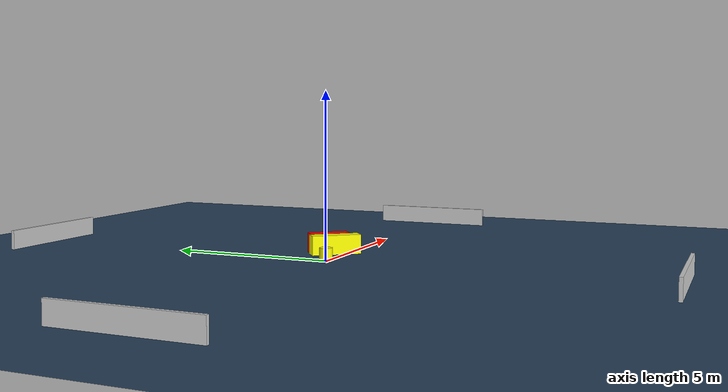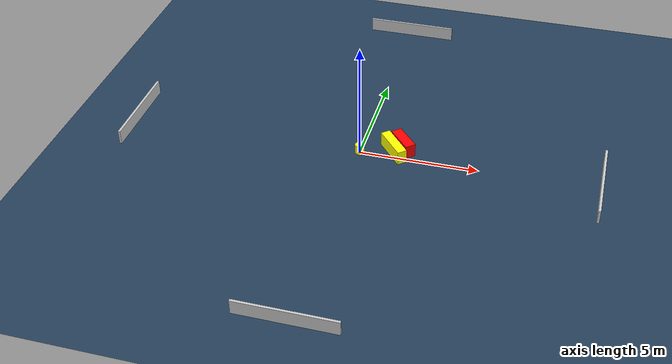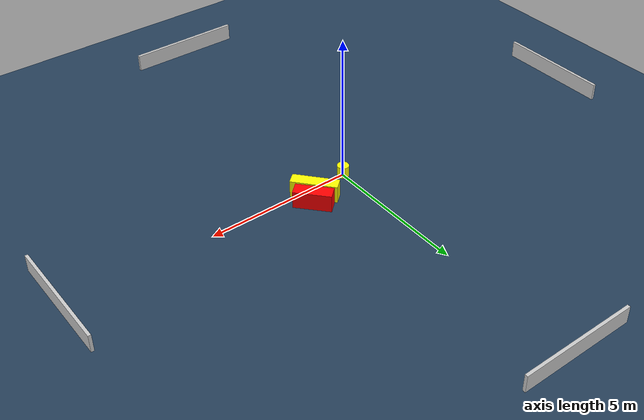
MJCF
<?xml version="1.0" ?>
<mujoco model="generated_environment">
  <option timestep="0.01" integrator="RK4" cone="elliptic"/>
  <default>
    <geom density="1"/>
  </default>
  <asset>
    <texture builtin="gradient" height="3072" name="skybox" rgb1="0.3 0.5 0.7" rgb2="0 0 0" type="skybox" width="512"/>
    <texture builtin="checker" height="300" name="groundplane" rgb1="0.2 0.3 0.4" rgb2="0.1 0.2 0.3" type="2d" width="300"/>
    <material name="groundplane" reflectance="0.2" texrepeat="5 5" texture="groundplane"/>
  </asset>
  <worldbody>
    <light dir="0 0 -1" directional="true" pos="0 0 1.5"/>
    <geom condim="3" friction="0.5 0.005 0.001" material="groundplane" name="floor" pos="0 0 0" size="0 0 0.05" type="plane"/>
    <body name="walls">
      <geom name="wall_1" condim="4" pos="-10.0 0.0 0.3" rgba="0.800000011920929 0.800000011920929 0.800000011920929 1.0" size="0.05 2.0 0.3" type="box"/>
      <geom name="wall_2" condim="4" pos="10.0 0.0 0.3" rgba="0.800000011920929 0.800000011920929 0.800000011920929 1.0" size="0.05 2.0 0.3" type="box"/>
      <geom name="wall_3" condim="4" pos="0.0 -10.0 0.3" rgba="0.800000011920929 0.800000011920929 0.800000011920929 1.0" size="2.0 0.05 0.3" type="box"/>
      <geom name="wall_4" condim="4" pos="0.0 10.0 0.3" rgba="0.800000011920929 0.800000011920929 0.800000011920929 1.0" size="2.0 0.05 0.3" type="box"/>
    </body>
    <body name="robot">
      <joint name="joint_x" type="slide" pos="0 0 0" axis="1 0 0"/>
      <joint name="joint_y" type="slide" pos="0 0 0" axis="0 1 0"/>
      <geom name="robot" type="cylinder" pos="0.0 0.0 0.2" size="0.2 0.2 0.0" mass="5.0" friction="1.0 0.005 0.0001" condim="4" rgba="1.0 1.0 0.0 1.0"/>
    </body>
    <body name="obstacle_1_movable">
      <geom name="obstacle_1_movable" condim="4" pos="1.3760133759833106 0.3078436025983789 0.3" euler="0 0 310.2316065657074" friction="0.0 0.005 0.001" rgba="1.0 1.0 0.0 1.0" size="0.7733607069426269 0.20524169298324382 0.3" type="box" mass="0.1"/>
      <joint type="free"/>
    </body>
    <body name="obstacle_2_static">
      <geom name="obstacle_2_static" condim="4" pos="1.7059772502856947 0.6722617780614867 0.3" euler="0 0 221.54550511160653" friction="0.0 0.005 0.001" rgba="1.0 0.0 0.0 1.0" size="0.22768213434205606 0.6286114295594607 0.3" type="box"/>
    </body>
  </worldbody>
  <actuator>
    <motor name="actuator_x" joint="joint_x" gear="1" ctrlrange="-1 1"/>
    <motor name="actuator_y" joint="joint_y" gear="1" ctrlrange="-1 1"/>
  </actuator>
</mujoco>
